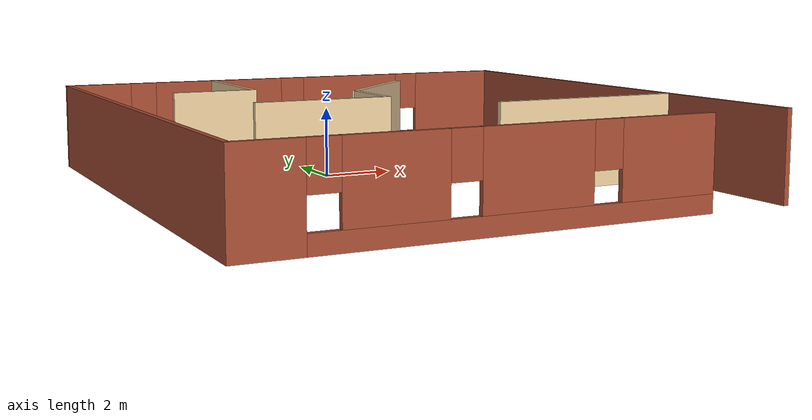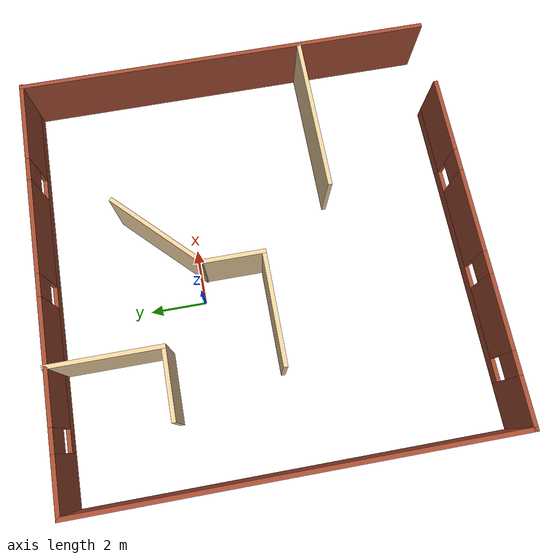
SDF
<?xml version='1.0'?>
<sdf version='1.7'>
  <model name='gMaze3'>
    <pose>1.11307 -2.14655 0 0 -0 0</pose>
    <link name='Wall_0'>
      <pose>0 7.40084 0 0 -0 0</pose>
      <visual name='Wall_0_Visual_0'>
        <pose>-6.50945 0 1.25 0 -0 0</pose>
        <geometry>
          <box>
            <size>1.98109 0.15 2.5</size>
          </box>
        </geometry>
        <material>
          <script>
            <uri>file://media/materials/scripts/gazebo.material</uri>
            <name>Gazebo/Bricks</name>
          </script>
          <ambient>1 1 1 1</ambient>
        </material>
        <meta>
          <layer>0</layer>
        </meta>
      </visual>
      <collision name='Wall_0_Collision_0'>
        <geometry>
          <box>
            <size>1.98109 0.15 2.5</size>
          </box>
        </geometry>
        <pose>-6.50945 0 1.25 0 -0 0</pose>
      </collision>
      <visual name='Wall_0_Visual_1'>
        <pose>0.990545 0 0.25 0 -0 0</pose>
        <geometry>
          <box>
            <size>13.0189 0.15 0.5</size>
          </box>
        </geometry>
        <material>
          <script>
            <uri>file://media/materials/scripts/gazebo.material</uri>
            <name>Gazebo/Bricks</name>
          </script>
          <ambient>1 1 1 1</ambient>
        </material>
        <meta>
          <layer>0</layer>
        </meta>
      </visual>
      <collision name='Wall_0_Collision_1'>
        <geometry>
          <box>
            <size>13.0189 0.15 0.5</size>
          </box>
        </geometry>
        <pose>0.990545 0 0.25 0 -0 0</pose>
      </collision>
      <visual name='Wall_0_Visual_2'>
        <pose>-2.60363 0 1.5 0 -0 0</pose>
        <geometry>
          <box>
            <size>4.23056 0.15 2</size>
          </box>
        </geometry>
        <material>
          <script>
            <uri>file://media/materials/scripts/gazebo.material</uri>
            <name>Gazebo/Bricks</name>
          </script>
          <ambient>1 1 1 1</ambient>
        </material>
        <meta>
          <layer>0</layer>
        </meta>
      </visual>
      <collision name='Wall_0_Collision_2'>
        <geometry>
          <box>
            <size>4.23056 0.15 2</size>
          </box>
        </geometry>
        <pose>-2.60363 0 1.5 0 -0 0</pose>
      </collision>
      <visual name='Wall_0_Visual_3'>
        <pose>2.02238 0 1.5 0 -0 0</pose>
        <geometry>
          <box>
            <size>3.42145 0.15 2</size>
          </box>
        </geometry>
        <material>
          <script>
            <uri>file://media/materials/scripts/gazebo.material</uri>
            <name>Gazebo/Bricks</name>
          </script>
          <ambient>1 1 1 1</ambient>
        </material>
        <meta>
          <layer>0</layer>
        </meta>
      </visual>
      <collision name='Wall_0_Collision_3'>
        <geometry>
          <box>
            <size>3.42145 0.15 2</size>
          </box>
        </geometry>
        <pose>2.02238 0 1.5 0 -0 0</pose>
      </collision>
      <visual name='Wall_0_Visual_4'>
        <pose>6.01655 0 1.5 0 -0 0</pose>
        <geometry>
          <box>
            <size>2.9669 0.15 2</size>
          </box>
        </geometry>
        <material>
          <script>
            <uri>file://media/materials/scripts/gazebo.material</uri>
            <name>Gazebo/Bricks</name>
          </script>
          <ambient>1 1 1 1</ambient>
        </material>
        <meta>
          <layer>0</layer>
        </meta>
      </visual>
      <collision name='Wall_0_Collision_4'>
        <geometry>
          <box>
            <size>2.9669 0.15 2</size>
          </box>
        </geometry>
        <pose>6.01655 0 1.5 0 -0 0</pose>
      </collision>
      <visual name='Wall_0_Visual_5'>
        <pose>-5.11891 0 1.9 0 -0 0</pose>
        <geometry>
          <box>
            <size>0.8 0.15 1.2</size>
          </box>
        </geometry>
        <material>
          <script>
            <uri>file://media/materials/scripts/gazebo.material</uri>
            <name>Gazebo/Bricks</name>
          </script>
          <ambient>1 1 1 1</ambient>
        </material>
        <meta>
          <layer>0</layer>
        </meta>
      </visual>
      <collision name='Wall_0_Collision_5'>
        <geometry>
          <box>
            <size>0.8 0.15 1.2</size>
          </box>
        </geometry>
        <pose>-5.11891 0 1.9 0 -0 0</pose>
      </collision>
      <visual name='Wall_0_Visual_6'>
        <pose>-0.088347 0 1.9 0 -0 0</pose>
        <geometry>
          <box>
            <size>0.8 0.15 1.2</size>
          </box>
        </geometry>
        <material>
          <script>
            <uri>file://media/materials/scripts/gazebo.material</uri>
            <name>Gazebo/Bricks</name>
          </script>
          <ambient>1 1 1 1</ambient>
        </material>
        <meta>
          <layer>0</layer>
        </meta>
      </visual>
      <collision name='Wall_0_Collision_6'>
        <geometry>
          <box>
            <size>0.8 0.15 1.2</size>
          </box>
        </geometry>
        <pose>-0.088347 0 1.9 0 -0 0</pose>
      </collision>
      <visual name='Wall_0_Visual_7'>
        <pose>4.1331 0 1.9 0 -0 0</pose>
        <geometry>
          <box>
            <size>0.8 0.15 1.2</size>
          </box>
        </geometry>
        <material>
          <script>
            <uri>file://media/materials/scripts/gazebo.material</uri>
            <name>Gazebo/Bricks</name>
          </script>
          <ambient>1 1 1 1</ambient>
        </material>
        <meta>
          <layer>0</layer>
        </meta>
      </visual>
      <collision name='Wall_0_Collision_7'>
        <geometry>
          <box>
            <size>0.8 0.15 1.2</size>
          </box>
        </geometry>
        <pose>4.1331 0 1.9 0 -0 0</pose>
      </collision>
    </link>
    <link name='Wall_1'>
      <collision name='Wall_1_Collision'>
        <geometry>
          <box>
            <size>15 0.15 2.5</size>
          </box>
        </geometry>
        <pose>0 0 1.25 0 -0 0</pose>
      </collision>
      <visual name='Wall_1_Visual'>
        <pose>0 0 1.25 0 -0 0</pose>
        <geometry>
          <box>
            <size>15 0.15 2.5</size>
          </box>
        </geometry>
        <material>
          <script>
            <uri>file://media/materials/scripts/gazebo.material</uri>
            <name>Gazebo/Bricks</name>
          </script>
          <ambient>1 1 1 1</ambient>
        </material>
        <meta>
          <layer>0</layer>
        </meta>
      </visual>
      <pose>7.40489 -0.024156 0 0 -0 -1.5708</pose>
    </link>
    <link name='Wall_17'>
      <collision name='Wall_17_Collision'>
        <geometry>
          <box>
            <size>5.75 0.15 2.5</size>
          </box>
        </geometry>
        <pose>0 0 1.25 0 -0 0</pose>
      </collision>
      <visual name='Wall_17_Visual'>
        <pose>0 0 1.25 0 -0 0</pose>
        <geometry>
          <box>
            <size>5.75 0.15 2.5</size>
          </box>
        </geometry>
        <material>
          <script>
            <uri>file://media/materials/scripts/gazebo.material</uri>
            <name>Gazebo/Grey</name>
          </script>
          <ambient>0.921569 0.807843 0.615686 1</ambient>
        </material>
        <meta>
          <layer>0</layer>
        </meta>
      </visual>
      <pose>4.59033 -2.84512 0 0 -0 3.14159</pose>
    </link>
    <link name='Wall_19'>
      <collision name='Wall_19_Collision'>
        <geometry>
          <box>
            <size>4 0.15 2.5</size>
          </box>
        </geometry>
        <pose>0 0 1.25 0 -0 0</pose>
      </collision>
      <visual name='Wall_19_Visual'>
        <pose>0 0 1.25 0 -0 0</pose>
        <geometry>
          <box>
            <size>4 0.15 2.5</size>
          </box>
        </geometry>
        <material>
          <script>
            <uri>file://media/materials/scripts/gazebo.material</uri>
            <name>Gazebo/Grey</name>
          </script>
          <ambient>0.921569 0.807843 0.615686 1</ambient>
        </material>
        <meta>
          <layer>0</layer>
        </meta>
      </visual>
      <pose>-2.17595 -0.158501 0 0 -0 0</pose>
    </link>
    <link name='Wall_20'>
      <collision name='Wall_20_Collision'>
        <geometry>
          <box>
            <size>2.25 0.15 2.5</size>
          </box>
        </geometry>
        <pose>0 0 1.25 0 -0 0</pose>
      </collision>
      <visual name='Wall_20_Visual'>
        <pose>0 0 1.25 0 -0 0</pose>
        <geometry>
          <box>
            <size>2.25 0.15 2.5</size>
          </box>
        </geometry>
        <material>
          <script>
            <uri>file://media/materials/scripts/gazebo.material</uri>
            <name>Gazebo/Grey</name>
          </script>
          <ambient>0.921569 0.807843 0.615686 1</ambient>
        </material>
        <meta>
          <layer>0</layer>
        </meta>
      </visual>
      <pose>-0.250951 0.891499 0 0 -0 1.5708</pose>
    </link>
    <link name='Wall_21'>
      <collision name='Wall_21_Collision'>
        <geometry>
          <box>
            <size>4 0.15 2.5</size>
          </box>
        </geometry>
        <pose>0 0 1.25 0 -0 0</pose>
      </collision>
      <visual name='Wall_21_Visual'>
        <pose>0 0 1.25 0 -0 0</pose>
        <geometry>
          <box>
            <size>4 0.15 2.5</size>
          </box>
        </geometry>
        <material>
          <script>
            <uri>file://media/materials/scripts/gazebo.material</uri>
            <name>Gazebo/Grey</name>
          </script>
          <ambient>0.921569 0.807843 0.615686 1</ambient>
        </material>
        <meta>
          <layer>0</layer>
        </meta>
      </visual>
      <pose>1.11023 3.30268 0 0 -0 0.785398</pose>
    </link>
    <link name='Wall_23'>
      <collision name='Wall_23_Collision'>
        <geometry>
          <box>
            <size>4 0.15 2.5</size>
          </box>
        </geometry>
        <pose>0 0 1.25 0 -0 0</pose>
      </collision>
      <visual name='Wall_23_Visual'>
        <pose>0 0 1.25 0 -0 0</pose>
        <geometry>
          <box>
            <size>4 0.15 2.5</size>
          </box>
        </geometry>
        <material>
          <script>
            <uri>file://media/materials/scripts/gazebo.material</uri>
            <name>Gazebo/Grey</name>
          </script>
          <ambient>0.921569 0.807843 0.615686 1</ambient>
        </material>
        <meta>
          <layer>0</layer>
        </meta>
      </visual>
      <pose>-2.82414 5.52416 0 0 -0 -1.5708</pose>
    </link>
    <link name='Wall_24'>
      <collision name='Wall_24_Collision'>
        <geometry>
          <box>
            <size>2.5 0.15 2.5</size>
          </box>
        </geometry>
        <pose>0 0 1.25 0 -0 0</pose>
      </collision>
      <visual name='Wall_24_Visual'>
        <pose>0 0 1.25 0 -0 0</pose>
        <geometry>
          <box>
            <size>2.5 0.15 2.5</size>
          </box>
        </geometry>
        <material>
          <script>
            <uri>file://media/materials/scripts/gazebo.material</uri>
            <name>Gazebo/Grey</name>
          </script>
          <ambient>0.921569 0.807843 0.615686 1</ambient>
        </material>
        <meta>
          <layer>0</layer>
        </meta>
      </visual>
      <pose>-3.99914 3.59916 0 0 -0 3.14159</pose>
    </link>
    <link name='Wall_3'>
      <collision name='Wall_3_Collision'>
        <geometry>
          <box>
            <size>15 0.15 2.5</size>
          </box>
        </geometry>
        <pose>0 0 1.25 0 -0 0</pose>
      </collision>
      <visual name='Wall_3_Visual'>
        <pose>0 0 1.25 0 -0 0</pose>
        <geometry>
          <box>
            <size>15 0.15 2.5</size>
          </box>
        </geometry>
        <material>
          <script>
            <uri>file://media/materials/scripts/gazebo.material</uri>
            <name>Gazebo/Bricks</name>
          </script>
          <ambient>1 1 1 1</ambient>
        </material>
        <meta>
          <layer>0</layer>
        </meta>
      </visual>
      <pose>-7.425 -0.024156 0 0 -0 -1.5708</pose>
    </link>
    <link name='Wall_4'>
      <pose>-1.25 -7.44916 0 0 -0 0</pose>
      <visual name='Wall_4_Visual_0'>
        <pose>-5.37558 0 1.25 0 -0 0</pose>
        <geometry>
          <box>
            <size>1.74884 0.15 2.5</size>
          </box>
        </geometry>
        <material>
          <script>
            <uri>file://media/materials/scripts/gazebo.material</uri>
            <name>Gazebo/Bricks</name>
          </script>
          <ambient>1 1 1 1</ambient>
        </material>
        <meta>
          <layer>0</layer>
        </meta>
      </visual>
      <collision name='Wall_4_Collision_0'>
        <geometry>
          <box>
            <size>1.74884 0.15 2.5</size>
          </box>
        </geometry>
        <pose>-5.37558 0 1.25 0 -0 0</pose>
      </collision>
      <visual name='Wall_4_Visual_1'>
        <pose>0.87442 0 0.25 0 -0 0</pose>
        <geometry>
          <box>
            <size>10.7512 0.15 0.5</size>
          </box>
        </geometry>
        <material>
          <script>
            <uri>file://media/materials/scripts/gazebo.material</uri>
            <name>Gazebo/Bricks</name>
          </script>
          <ambient>1 1 1 1</ambient>
        </material>
        <meta>
          <layer>0</layer>
        </meta>
      </visual>
      <collision name='Wall_4_Collision_1'>
        <geometry>
          <box>
            <size>10.7512 0.15 0.5</size>
          </box>
        </geometry>
        <pose>0.87442 0 0.25 0 -0 0</pose>
      </collision>
      <visual name='Wall_4_Visual_2'>
        <pose>-2.40199 0 1.5 0 -0 0</pose>
        <geometry>
          <box>
            <size>2.59834 0.15 2</size>
          </box>
        </geometry>
        <material>
          <script>
            <uri>file://media/materials/scripts/gazebo.material</uri>
            <name>Gazebo/Bricks</name>
          </script>
          <ambient>1 1 1 1</ambient>
        </material>
        <meta>
          <layer>0</layer>
        </meta>
      </visual>
      <collision name='Wall_4_Collision_2'>
        <geometry>
          <box>
            <size>2.59834 0.15 2</size>
          </box>
        </geometry>
        <pose>-2.40199 0 1.5 0 -0 0</pose>
      </collision>
      <visual name='Wall_4_Visual_3'>
        <pose>1.19683 0 1.5 0 -0 0</pose>
        <geometry>
          <box>
            <size>2.99931 0.15 2</size>
          </box>
        </geometry>
        <material>
          <script>
            <uri>file://media/materials/scripts/gazebo.material</uri>
            <name>Gazebo/Bricks</name>
          </script>
          <ambient>1 1 1 1</ambient>
        </material>
        <meta>
          <layer>0</layer>
        </meta>
      </visual>
      <collision name='Wall_4_Collision_3'>
        <geometry>
          <box>
            <size>2.99931 0.15 2</size>
          </box>
        </geometry>
        <pose>1.19683 0 1.5 0 -0 0</pose>
      </collision>
      <visual name='Wall_4_Visual_4'>
        <pose>4.87324 0 1.5 0 -0 0</pose>
        <geometry>
          <box>
            <size>2.75352 0.15 2</size>
          </box>
        </geometry>
        <material>
          <script>
            <uri>file://media/materials/scripts/gazebo.material</uri>
            <name>Gazebo/Bricks</name>
          </script>
          <ambient>1 1 1 1</ambient>
        </material>
        <meta>
          <layer>0</layer>
        </meta>
      </visual>
      <collision name='Wall_4_Collision_4'>
        <geometry>
          <box>
            <size>2.75352 0.15 2</size>
          </box>
        </geometry>
        <pose>4.87324 0 1.5 0 -0 0</pose>
      </collision>
      <visual name='Wall_4_Visual_5'>
        <pose>-4.10116 0 1.9 0 -0 0</pose>
        <geometry>
          <box>
            <size>0.8 0.15 1.2</size>
          </box>
        </geometry>
        <material>
          <script>
            <uri>file://media/materials/scripts/gazebo.material</uri>
            <name>Gazebo/Bricks</name>
          </script>
          <ambient>1 1 1 1</ambient>
        </material>
        <meta>
          <layer>0</layer>
        </meta>
      </visual>
      <collision name='Wall_4_Collision_5'>
        <geometry>
          <box>
            <size>0.8 0.15 1.2</size>
          </box>
        </geometry>
        <pose>-4.10116 0 1.9 0 -0 0</pose>
      </collision>
      <visual name='Wall_4_Visual_6'>
        <pose>-0.702821 0 1.9 0 -0 0</pose>
        <geometry>
          <box>
            <size>0.8 0.15 1.2</size>
          </box>
        </geometry>
        <material>
          <script>
            <uri>file://media/materials/scripts/gazebo.material</uri>
            <name>Gazebo/Bricks</name>
          </script>
          <ambient>1 1 1 1</ambient>
        </material>
        <meta>
          <layer>0</layer>
        </meta>
      </visual>
      <collision name='Wall_4_Collision_6'>
        <geometry>
          <box>
            <size>0.8 0.15 1.2</size>
          </box>
        </geometry>
        <pose>-0.702821 0 1.9 0 -0 0</pose>
      </collision>
      <visual name='Wall_4_Visual_7'>
        <pose>3.09648 0 1.9 0 -0 0</pose>
        <geometry>
          <box>
            <size>0.8 0.15 1.2</size>
          </box>
        </geometry>
        <material>
          <script>
            <uri>file://media/materials/scripts/gazebo.material</uri>
            <name>Gazebo/Bricks</name>
          </script>
          <ambient>1 1 1 1</ambient>
        </material>
        <meta>
          <layer>0</layer>
        </meta>
      </visual>
      <collision name='Wall_4_Collision_7'>
        <geometry>
          <box>
            <size>0.8 0.15 1.2</size>
          </box>
        </geometry>
        <pose>3.09648 0 1.9 0 -0 0</pose>
      </collision>
    </link>
    <static>1</static>
  </model>
</sdf>
